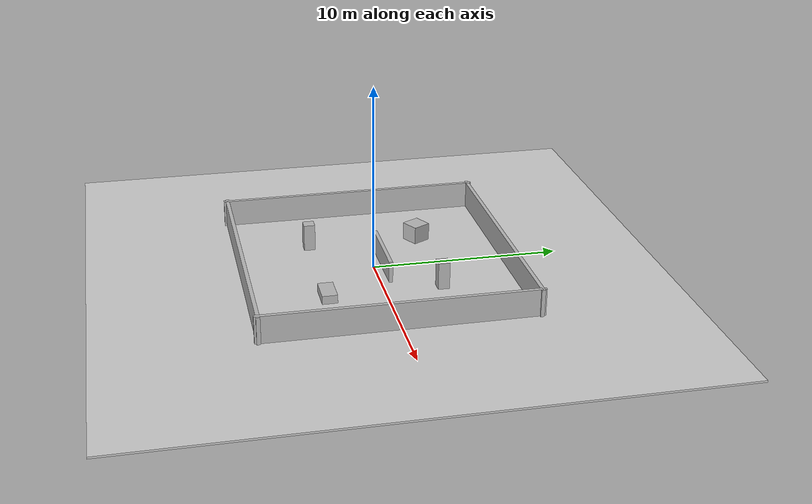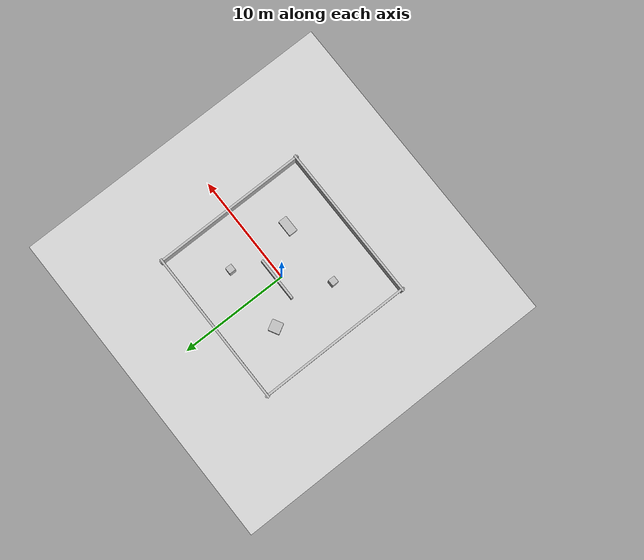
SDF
<?xml version="1.0" ?>
<!-- Simple walled test room for Nav2 SLAM: 14x14m with pillars/boxes
     so the lidar always sees features. -->
<sdf version="1.8">
  <world name="nav2_world">
    <physics name="1ms" type="ignored">
      <max_step_size>0.001</max_step_size>
      <real_time_factor>1.0</real_time_factor>
    </physics>
    <plugin filename="gz-sim-physics-system" name="gz::sim::systems::Physics"/>
    <!-- required for the lidar sensor in the robot URDF -->
    <plugin filename="gz-sim-sensors-system" name="gz::sim::systems::Sensors">
      <render_engine>ogre2</render_engine>
    </plugin>
    <plugin filename="gz-sim-scene-broadcaster-system" name="gz::sim::systems::SceneBroadcaster"/>
    <plugin filename="gz-sim-user-commands-system" name="gz::sim::systems::UserCommands"/>

    <light type="directional" name="sun">
      <cast_shadows>true</cast_shadows>
      <pose>0 0 10 0 0 0</pose>
      <diffuse>0.8 0.8 0.8 1</diffuse>
      <specular>0.2 0.2 0.2 1</specular>
      <attenuation>
        <range>1000</range>
        <constant>0.9</constant>
        <linear>0.01</linear>
        <quadratic>0.001</quadratic>
      </attenuation>
      <direction>-0.5 0.1 -0.9</direction>
    </light>

    <model name="ground_plane">
      <static>true</static>
      <link name="link">
        <collision name="collision">
          <geometry><box><size>30 30 0.1</size></box></geometry>
        </collision>
        <visual name="visual">
          <geometry><box><size>30 30 0.1</size></box></geometry>
          <material>
            <ambient>0.8 0.8 0.8 1</ambient>
            <diffuse>0.8 0.8 0.8 1</diffuse>
          </material>
        </visual>
      </link>
    </model>

    <!-- perimeter walls: 14x14m room, 1.5m high -->
    <model name="wall_north">
      <static>true</static>
      <pose>0 7 0.75 0 0 0</pose>
      <link name="link">
        <collision name="c"><geometry><box><size>14.4 0.2 1.5</size></box></geometry></collision>
        <visual name="v"><geometry><box><size>14.4 0.2 1.5</size></box></geometry></visual>
      </link>
    </model>
    <model name="wall_south">
      <static>true</static>
      <pose>0 -7 0.75 0 0 0</pose>
      <link name="link">
        <collision name="c"><geometry><box><size>14.4 0.2 1.5</size></box></geometry></collision>
        <visual name="v"><geometry><box><size>14.4 0.2 1.5</size></box></geometry></visual>
      </link>
    </model>
    <model name="wall_east">
      <static>true</static>
      <pose>7 0 0.75 0 0 0</pose>
      <link name="link">
        <collision name="c"><geometry><box><size>0.2 14.4 1.5</size></box></geometry></collision>
        <visual name="v"><geometry><box><size>0.2 14.4 1.5</size></box></geometry></visual>
      </link>
    </model>
    <model name="wall_west">
      <static>true</static>
      <pose>-7 0 0.75 0 0 0</pose>
      <link name="link">
        <collision name="c"><geometry><box><size>0.2 14.4 1.5</size></box></geometry></collision>
        <visual name="v"><geometry><box><size>0.2 14.4 1.5</size></box></geometry></visual>
      </link>
    </model>

    <!-- inner obstacles: pillars + boxes as SLAM features -->
    <model name="pillar_1">
      <static>true</static>
      <pose>3 3 0.75 0 0 0</pose>
      <link name="link">
        <collision name="c"><geometry><box><size>0.6 0.6 1.5</size></box></geometry></collision>
        <visual name="v"><geometry><box><size>0.6 0.6 1.5</size></box></geometry></visual>
      </link>
    </model>
    <model name="pillar_2">
      <static>true</static>
      <pose>-3 -3 0.75 0 0 0</pose>
      <link name="link">
        <collision name="c"><geometry><box><size>0.6 0.6 1.5</size></box></geometry></collision>
        <visual name="v"><geometry><box><size>0.6 0.6 1.5</size></box></geometry></visual>
      </link>
    </model>
    <model name="box_1">
      <static>true</static>
      <pose>-3 3 0.5 0 0 0.5</pose>
      <link name="link">
        <collision name="c"><geometry><box><size>1.0 1.0 1.0</size></box></geometry></collision>
        <visual name="v"><geometry><box><size>1.0 1.0 1.0</size></box></geometry></visual>
      </link>
    </model>
    <model name="box_2">
      <static>true</static>
      <pose>3 -3 0.25 0 0 0</pose>
      <link name="link">
        <collision name="c"><geometry><box><size>1.5 0.8 0.5</size></box></geometry></collision>
        <visual name="v"><geometry><box><size>1.5 0.8 0.5</size></box></geometry></visual>
      </link>
    </model>
    <model name="divider">
      <static>true</static>
      <pose>0 0.5 0.6 0 0 0</pose>
      <link name="link">
        <collision name="c"><geometry><box><size>4.0 0.2 1.2</size></box></geometry></collision>
        <visual name="v"><geometry><box><size>4.0 0.2 1.2</size></box></geometry></visual>
      </link>
    </model>
  </world>
</sdf>
